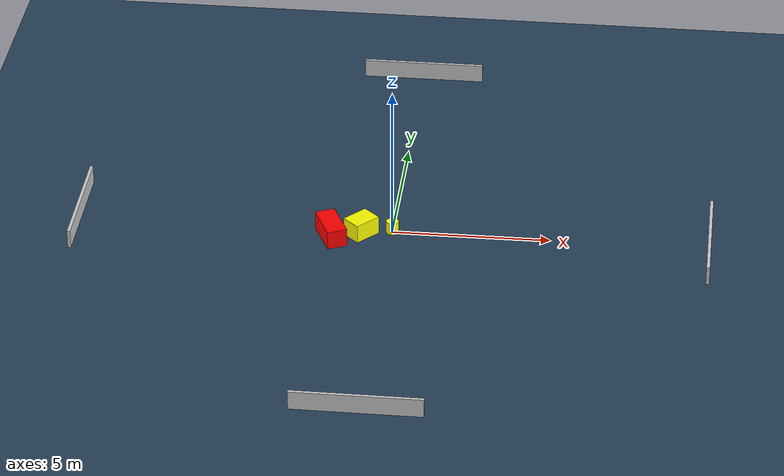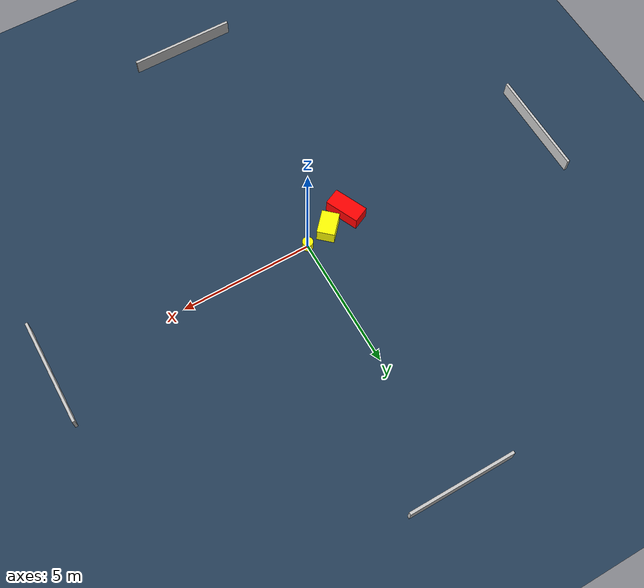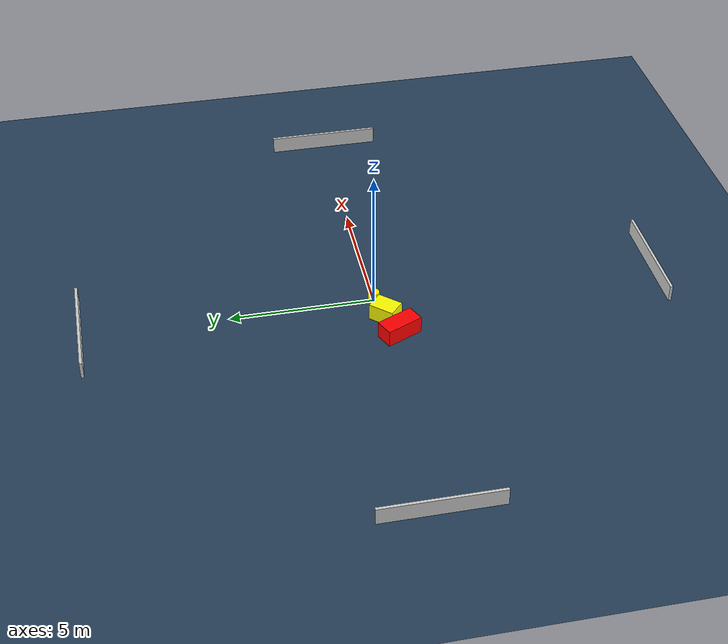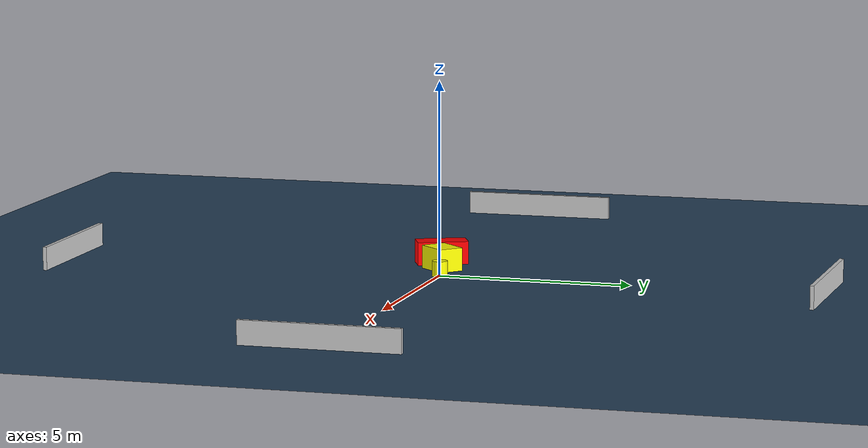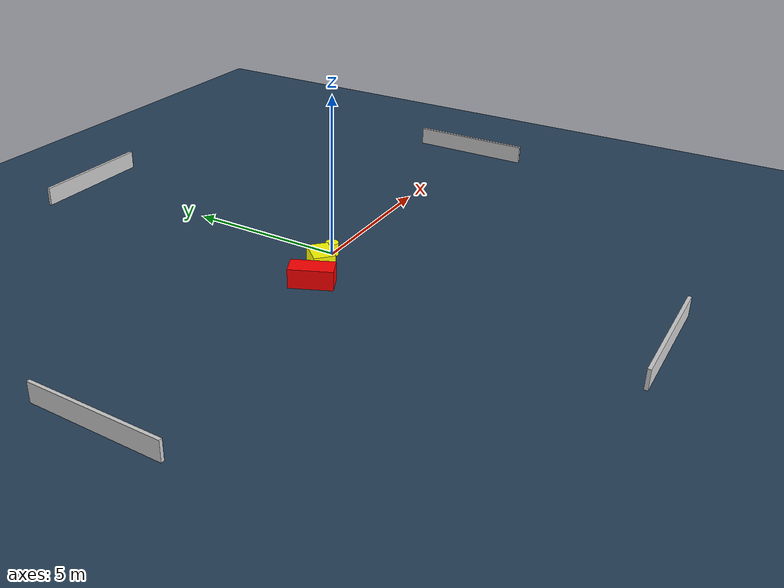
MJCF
<?xml version="1.0" ?>
<mujoco model="generated_environment">
  <option timestep="0.01" integrator="RK4" cone="elliptic"/>
  <default>
    <geom density="1"/>
  </default>
  <asset>
    <texture builtin="gradient" height="3072" name="skybox" rgb1="0.3 0.5 0.7" rgb2="0 0 0" type="skybox" width="512"/>
    <texture builtin="checker" height="300" name="groundplane" rgb1="0.2 0.3 0.4" rgb2="0.1 0.2 0.3" type="2d" width="300"/>
    <material name="groundplane" reflectance="0.2" texrepeat="5 5" texture="groundplane"/>
  </asset>
  <worldbody>
    <light dir="0 0 -1" directional="true" pos="0 0 1.5"/>
    <geom condim="3" friction="0.5 0.005 0.001" material="groundplane" name="floor" pos="0 0 0" size="0 0 0.05" type="plane"/>
    <body name="walls">
      <geom name="wall_1" condim="4" pos="-10.0 0.0 0.3" rgba="0.800000011920929 0.800000011920929 0.800000011920929 1.0" size="0.05 2.0 0.3" type="box"/>
      <geom name="wall_2" condim="4" pos="10.0 0.0 0.3" rgba="0.800000011920929 0.800000011920929 0.800000011920929 1.0" size="0.05 2.0 0.3" type="box"/>
      <geom name="wall_3" condim="4" pos="0.0 -10.0 0.3" rgba="0.800000011920929 0.800000011920929 0.800000011920929 1.0" size="2.0 0.05 0.3" type="box"/>
      <geom name="wall_4" condim="4" pos="0.0 10.0 0.3" rgba="0.800000011920929 0.800000011920929 0.800000011920929 1.0" size="2.0 0.05 0.3" type="box"/>
    </body>
    <body name="robot">
      <joint name="joint_x" type="slide" pos="0 0 0" axis="1 0 0"/>
      <joint name="joint_y" type="slide" pos="0 0 0" axis="0 1 0"/>
      <geom name="robot" type="cylinder" pos="0.0 0.0 0.2" size="0.2 0.2 0.0" mass="5.0" friction="1.0 0.005 0.0001" condim="4" rgba="1.0 1.0 0.0 1.0"/>
    </body>
    <body name="obstacle_1_movable">
      <geom name="obstacle_1_movable" condim="4" pos="-0.9678400780782959 -0.21220963537835819 0.3" euler="0 0 227.53701545183276" friction="0.0 0.005 0.001" rgba="1.0 1.0 0.0 1.0" size="0.4483267514218713 0.32938128492345653 0.3" type="box" mass="0.1"/>
      <joint type="free"/>
    </body>
    <body name="obstacle_2_static">
      <geom name="obstacle_2_static" condim="4" pos="-1.8960380930235097 -0.4977797264058221 0.3" euler="0 0 294.5468664378814" friction="0.0 0.005 0.001" rgba="1.0 0.0 0.0 1.0" size="0.6623006752530183 0.31922384847854984 0.3" type="box"/>
    </body>
  </worldbody>
  <actuator>
    <motor name="actuator_x" joint="joint_x" gear="1" ctrlrange="-1 1"/>
    <motor name="actuator_y" joint="joint_y" gear="1" ctrlrange="-1 1"/>
  </actuator>
</mujoco>
